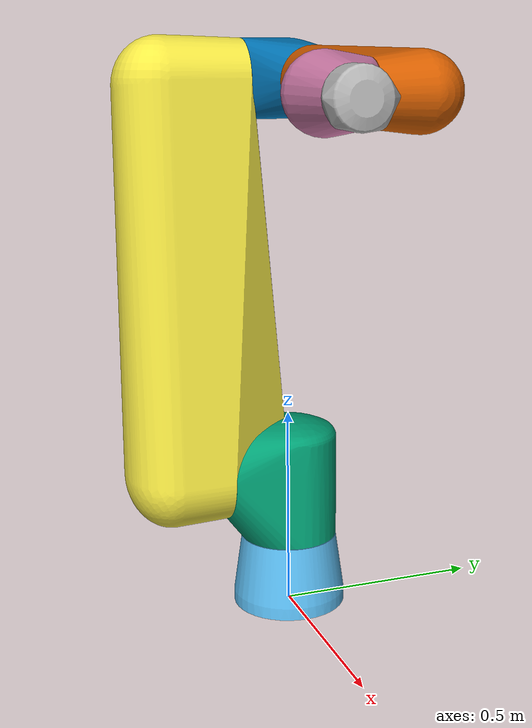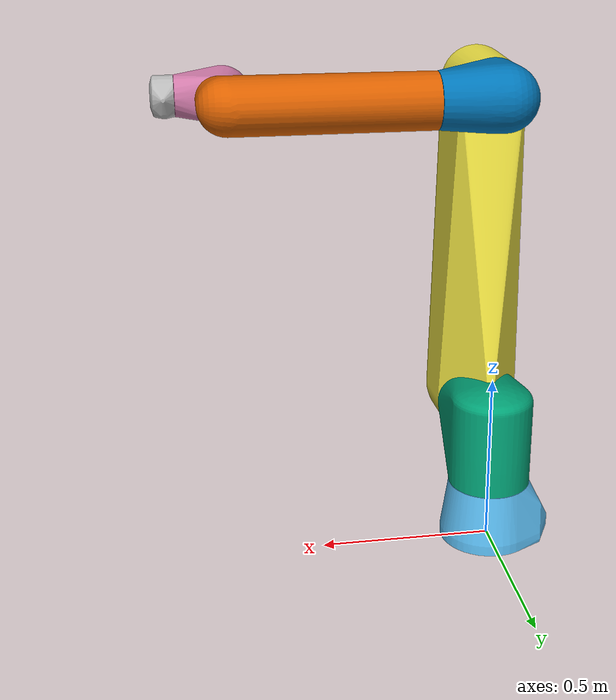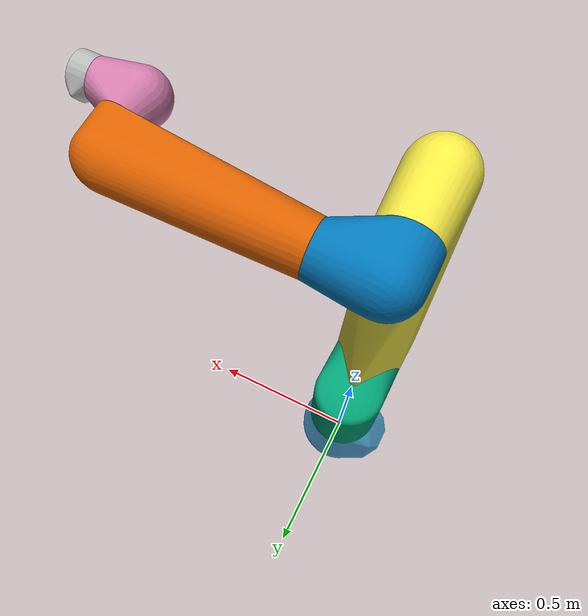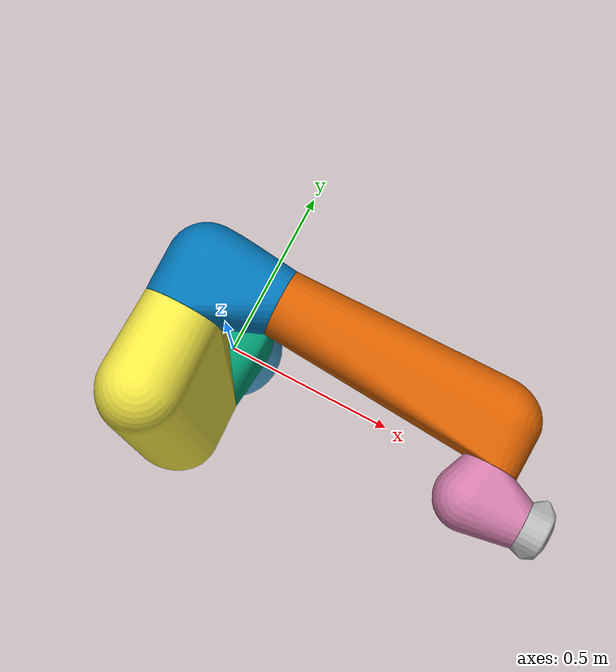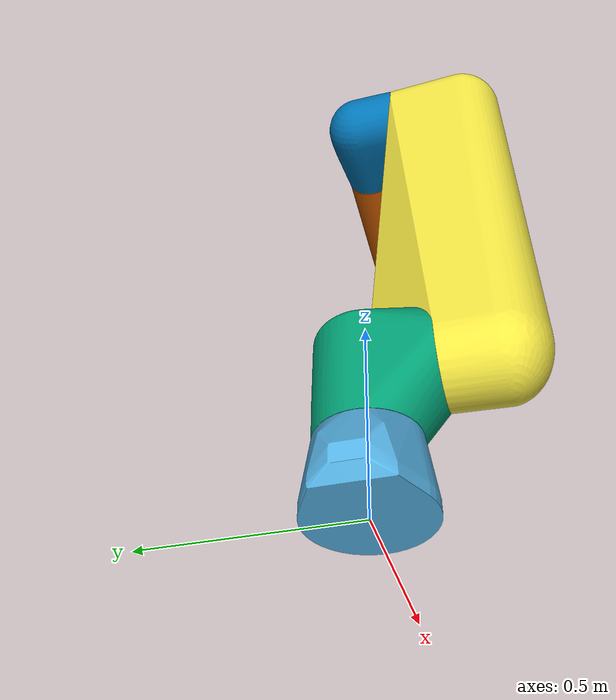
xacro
<?xml version="1.0"?>
<robot xmlns:xacro="http://www.ros.org/wiki/xacro" name="crx_30ia">
  <xacro:arg name="prefix" default=""/>
  <xacro:include filename="$(find fanuc_robot_descriptions)/urdf/crx_30ia_macro.xacro"/>
  <link name="world"/>
  <xacro:crx_30ia prefix="$(arg prefix)" parent="world">
    <origin xyz="0 0 0" rpy="0 0 0"/>
  </xacro:crx_30ia>
</robot>

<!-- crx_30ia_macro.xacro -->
<robot xmlns:xacro="http://www.ros.org/wiki/xacro">

  <!-- Fanuc CRX-30iA - generated from RoboDK .robot -->
  <xacro:macro name="crx_30ia" params="prefix parent *origin">

    <material name="${prefix}crx_30ia_grey"><color rgba="0.85 0.85 0.85 1.0"/></material>

    <joint name="${prefix}base_joint" type="fixed">
      <xacro:insert_block name="origin"/>
      <parent link="${parent}"/>
      <child link="${prefix}base_link"/>
    </joint>

    <link name="${prefix}base_link">
      <visual>
        <origin xyz="0 0 0" rpy="0 0 0"/>
        <geometry>
          <mesh filename="package://fanuc_robot_descriptions/meshes/crx_30ia/visual/base_link.dae" scale="0.001 0.001 0.001"/>
        </geometry>
      </visual>
      <collision>
        <origin xyz="0 0 0" rpy="0 0 0"/>
        <geometry>
          <mesh filename="package://fanuc_robot_descriptions/meshes/crx_30ia/collision/base_link.stl" scale="0.001 0.001 0.001"/>
        </geometry>
      </collision>
    </link>

    <link name="${prefix}link_1">
      <visual>
        <origin xyz="0 0 0" rpy="0 0 0"/>
        <geometry>
          <mesh filename="package://fanuc_robot_descriptions/meshes/crx_30ia/visual/link_1.dae" scale="0.001 0.001 0.001"/>
        </geometry>
      </visual>
      <collision>
        <origin xyz="0 0 0" rpy="0 0 0"/>
        <geometry>
          <mesh filename="package://fanuc_robot_descriptions/meshes/crx_30ia/collision/link_1.stl" scale="0.001 0.001 0.001"/>
        </geometry>
      </collision>
    </link>

    <link name="${prefix}link_2">
      <visual>
        <origin xyz="0 0 0" rpy="0 0 0"/>
        <geometry>
          <mesh filename="package://fanuc_robot_descriptions/meshes/crx_30ia/visual/link_2.dae" scale="0.001 0.001 0.001"/>
        </geometry>
      </visual>
      <collision>
        <origin xyz="0 0 0" rpy="0 0 0"/>
        <geometry>
          <mesh filename="package://fanuc_robot_descriptions/meshes/crx_30ia/collision/link_2.stl" scale="0.001 0.001 0.001"/>
        </geometry>
      </collision>
    </link>

    <link name="${prefix}link_3">
      <visual>
        <origin xyz="0 0 0" rpy="0 0 0"/>
        <geometry>
          <mesh filename="package://fanuc_robot_descriptions/meshes/crx_30ia/visual/link_3.dae" scale="0.001 0.001 0.001"/>
        </geometry>
      </visual>
      <collision>
        <origin xyz="0 0 0" rpy="0 0 0"/>
        <geometry>
          <mesh filename="package://fanuc_robot_descriptions/meshes/crx_30ia/collision/link_3.stl" scale="0.001 0.001 0.001"/>
        </geometry>
      </collision>
    </link>

    <link name="${prefix}link_4">
      <visual>
        <origin xyz="0 0 0" rpy="0 0 0"/>
        <geometry>
          <mesh filename="package://fanuc_robot_descriptions/meshes/crx_30ia/visual/link_4.dae" scale="0.001 0.001 0.001"/>
        </geometry>
      </visual>
      <collision>
        <origin xyz="0 0 0" rpy="0 0 0"/>
        <geometry>
          <mesh filename="package://fanuc_robot_descriptions/meshes/crx_30ia/collision/link_4.stl" scale="0.001 0.001 0.001"/>
        </geometry>
      </collision>
    </link>

    <link name="${prefix}link_5">
      <visual>
        <origin xyz="0 0 0" rpy="0 0 0"/>
        <geometry>
          <mesh filename="package://fanuc_robot_descriptions/meshes/crx_30ia/visual/link_5.dae" scale="0.001 0.001 0.001"/>
        </geometry>
      </visual>
      <collision>
        <origin xyz="0 0 0" rpy="0 0 0"/>
        <geometry>
          <mesh filename="package://fanuc_robot_descriptions/meshes/crx_30ia/collision/link_5.stl" scale="0.001 0.001 0.001"/>
        </geometry>
      </collision>
    </link>

    <link name="${prefix}link_6">
      <visual>
        <origin xyz="0 0 0" rpy="0 0 0"/>
        <geometry>
          <mesh filename="package://fanuc_robot_descriptions/meshes/crx_30ia/visual/link_6.dae" scale="0.001 0.001 0.001"/>
        </geometry>
      </visual>
      <collision>
        <origin xyz="0 0 0" rpy="0 0 0"/>
        <geometry>
          <mesh filename="package://fanuc_robot_descriptions/meshes/crx_30ia/collision/link_6.stl" scale="0.001 0.001 0.001"/>
        </geometry>
      </collision>
    </link>

    <joint name="${prefix}joint_1" type="revolute">
      <parent link="${prefix}base_link"/>
      <child link="${prefix}link_1"/>
      <origin xyz="0 0 0.37" rpy="0 -0 0"/>
      <axis xyz="0 0 1"/>
      <limit lower="-3.1415927" upper="3.1415927" effort="100.0" velocity="3.1416"/>
    </joint>

    <joint name="${prefix}joint_2" type="revolute">
      <parent link="${prefix}link_1"/>
      <child link="${prefix}link_2"/>
      <origin xyz="0 0 0" rpy="-1.5707963 -1.5707963 0"/>
      <axis xyz="0 0 1"/>
      <limit lower="-3.1415927" upper="3.1415927" effort="100.0" velocity="3.1416"/>
    </joint>

    <joint name="${prefix}joint_3" type="revolute">
      <parent link="${prefix}link_2"/>
      <child link="${prefix}link_3"/>
      <origin xyz="0.95 0 0" rpy="0 -0 0"/>
      <axis xyz="0 0 1"/>
      <limit lower="-4.712389" upper="4.712389" effort="100.0" velocity="3.1416"/>
    </joint>

    <joint name="${prefix}joint_4" type="revolute">
      <parent link="${prefix}link_3"/>
      <child link="${prefix}link_4"/>
      <origin xyz="0 0.75 4.5924255e-17" rpy="-1.5707963 -0 0"/>
      <axis xyz="0 0 1"/>
      <limit lower="-3.3161256" upper="3.3161256" effort="100.0" velocity="3.1416"/>
    </joint>

    <joint name="${prefix}joint_5" type="revolute">
      <parent link="${prefix}link_4"/>
      <child link="${prefix}link_5"/>
      <origin xyz="1.1368684e-16 0.185 0" rpy="1.5707963 -0 0"/>
      <axis xyz="0 0 1"/>
      <limit lower="-3.1415927" upper="3.1415927" effort="100.0" velocity="3.1416"/>
    </joint>

    <joint name="${prefix}joint_6" type="revolute">
      <parent link="${prefix}link_5"/>
      <child link="${prefix}link_6"/>
      <origin xyz="0 0.18 0" rpy="-1.5707963 -0 0"/>
      <axis xyz="0 0 1"/>
      <limit lower="-3.9269908" upper="3.9269908" effort="100.0" velocity="3.1416"/>
    </joint>

    <link name="${prefix}flange"/>
    <joint name="${prefix}link_6-flange" type="fixed">
      <parent link="${prefix}link_6"/>
      <child link="${prefix}flange"/>
      <origin xyz="0 0 0" rpy="0 0 0"/>
    </joint>
    <link name="${prefix}tool0"/>
    <joint name="${prefix}flange-tool0" type="fixed">
      <parent link="${prefix}flange"/>
      <child link="${prefix}tool0"/>
      <origin xyz="0 0 0" rpy="0 0 0"/>
    </joint>

  </xacro:macro>
</robot>
